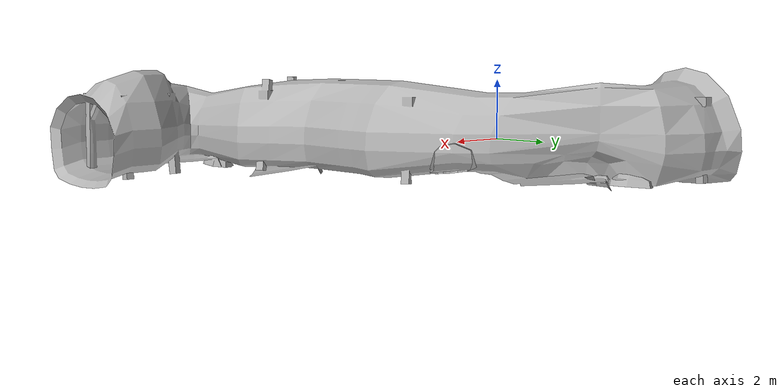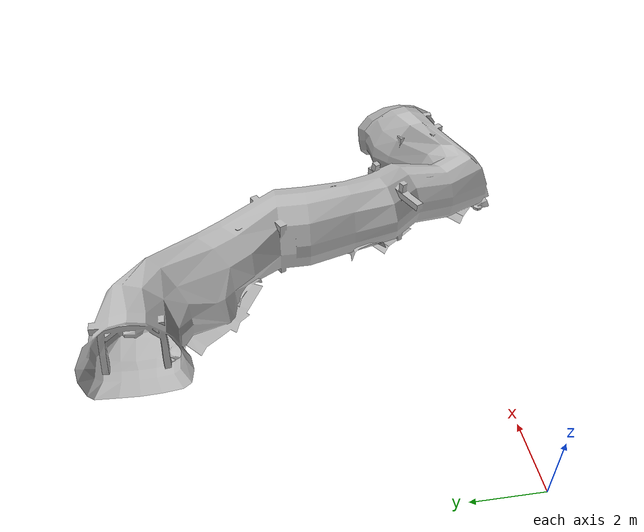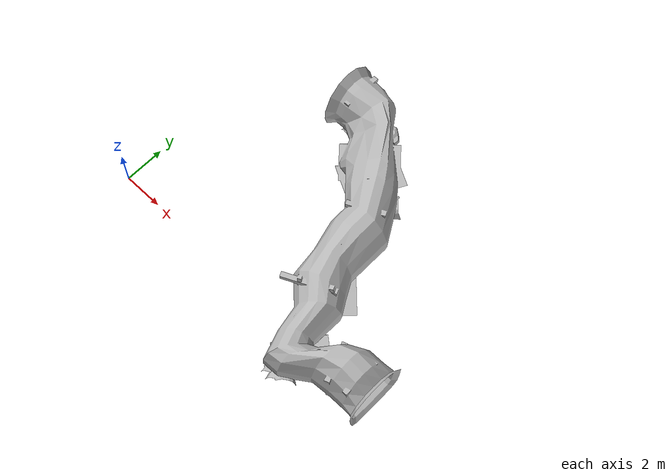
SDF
<?xml version="1.0" ?>
<sdf version="1.6">
  <model name="rocky_tunnel_1">
    <static>true</static>
    <link name="link">
      <collision name="collision">
        <geometry>
          <mesh>
            <uri>model://rocky_tunnel_1/meshes/rocky_tunnel_1.dae</uri>
          </mesh>
        </geometry>
      </collision>
      <visual name="visual">
        <geometry>
          <mesh>
            <uri>model://rocky_tunnel_1/meshes/rocky_tunnel_1.dae</uri>
          </mesh>
        </geometry>
      </visual>
    </link>
  </model>
</sdf>
